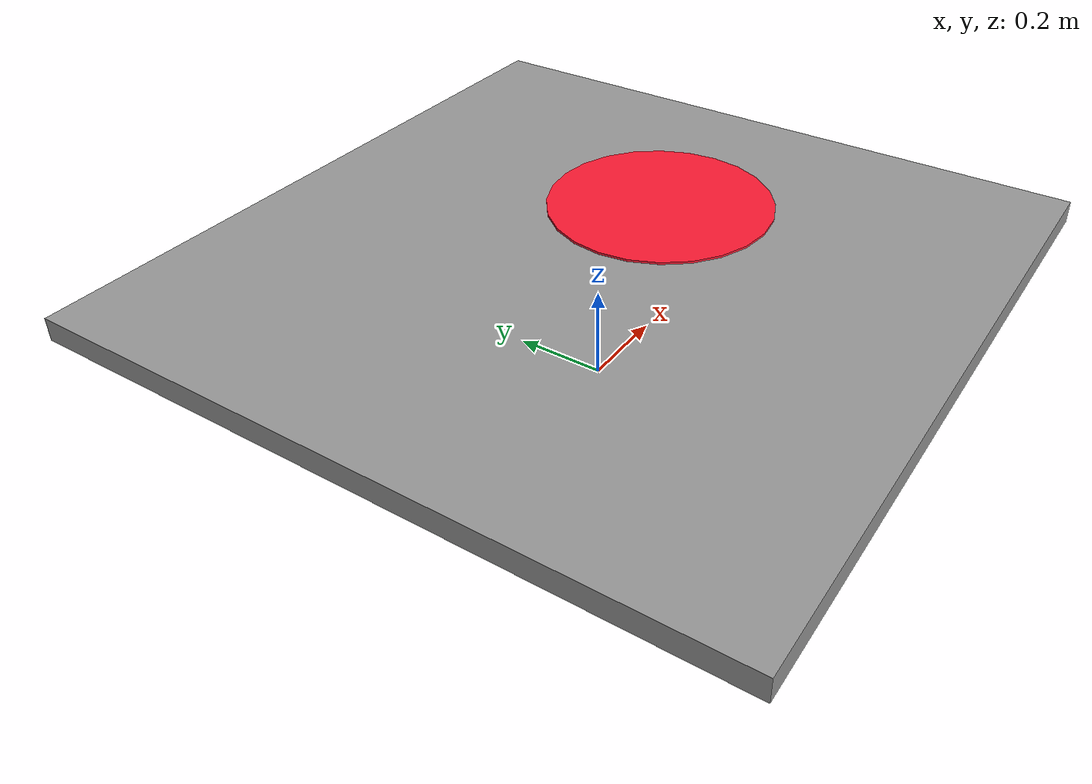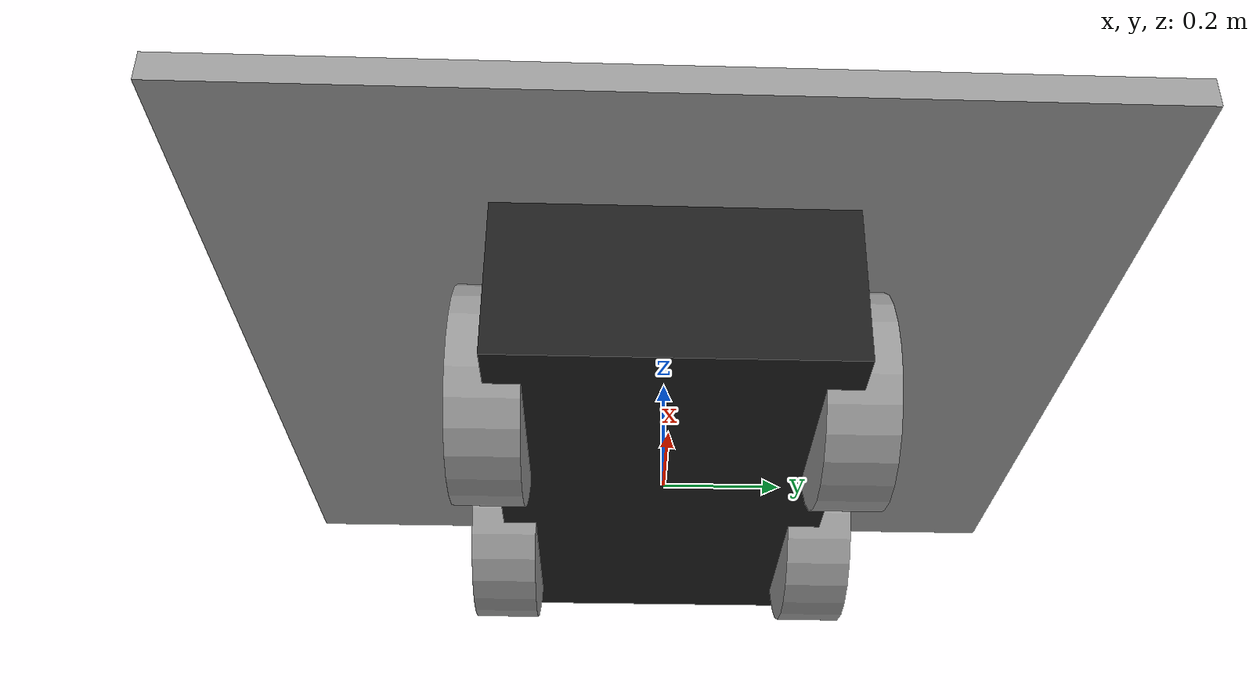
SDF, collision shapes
<?xml version='1.0'?>
<sdf version="1.3">
  <model name="husky">
    <pose>0 0 0 0 0 0</pose>
    <!-- Main Chassis -->
    <link name="base_link">
      <!-- Physics -->
      <collision name='collision'>
        <pose>0 0 0.1 0 0 0</pose>
        <geometry>
          <box>
            <size>1.0074 0.5709 0.2675</size>
          </box>
        </geometry>
      </collision>

      <inertial>
        <mass>1.3855</mass>
        <pose>-0.0856132 -0.000839955 0.238145  0 0 0</pose>
        <inertia>
          <ixx>2.2343</ixx>
          <ixy>-0.023642</ixy>
          <ixz>0.275174</ixz>
          <iyy>3.42518</iyy>
          <iyz>0.00239624</iyz>
          <izz>2.1241</izz>
        </inertia>
      </inertial>

      <!-- Visual -->
      <!-- Base frame -->
      <visual name='base'>
        <pose>0 0 0 0 0 0</pose>
        <geometry>
          <mesh><uri>model://husky/meshes/base_link.stl</uri></mesh>
        </geometry>
        <material>
          <script>
            <name>Gazebo/FlatBlack</name>
          </script>
        </material>
      </visual>

      <!-- Top Plate -->
      <visual name='top_plate'>
        <pose>0 0 0 0 0 0</pose>
        <geometry>
          <mesh><uri>model://husky/meshes/top_plate.stl</uri></mesh>
        </geometry>
        <material>
          <script>
            <name>Gazebo/Yellow</name>
          </script>
        </material>
      </visual>

      <!-- Front Bumper -->
      <visual name='front_bumper'>
        <pose>0.47 0 0.091 0 0 0</pose>
        <geometry>
          <mesh><uri>model://husky/meshes/bumper.stl</uri></mesh>
        </geometry>
        <material>
          <script>
            <name>Gazebo/FlatBlack</name>
          </script>
        </material>
      </visual>

      <!-- Rear Bumper -->
      <visual name='rear_bumper'>
        <pose>-0.47 0 0.091 0 0 3.141</pose>
        <geometry>
          <mesh><uri>model://husky/meshes/bumper.stl</uri></mesh>
        </geometry>
        <material>
          <script>
            <name>Gazebo/FlatBlack</name>
          </script>
        </material>
      </visual>

      <!-- User Rail -->
      <visual name='user_rail'>
        <pose>0.272 0 0.245 0 0 0</pose>
        <geometry>
          <mesh><uri>model://husky/meshes/user_rail.stl</uri></mesh>
        </geometry>
        <material>
          <script>
            <name>Gazebo/Grey</name>
          </script>
        </material>
      </visual>
    </link>

    <!-- Back Left Wheel -->
    <link name='back_left_wheel'>
      <pose>-0.256 0.285475 0.035 0 0 0</pose>
      <inertial>
        <mass>0.26357</mass>
        <pose>0 0 0 0 0 0</pose>
        <inertia>
          <ixx>0.0246688</ixx>
          <ixy>0</ixy>
          <ixz>0</ixz>
          <iyy>0.0246688</iyy>
          <iyz>0</iyz>
          <izz>0.0441058</izz>
        </inertia>
      </inertial>
      <collision name='back_left_wheel_collision'>
        <pose>0 0 0 -1.5707 0 0</pose>
        <geometry>
          <cylinder>
            <radius>0.17775</radius>
            <length>0.1143</length>
          </cylinder>
        </geometry>
        <surface>
          <friction>
            <ode>
              <mu>100000.0</mu>
              <mu2>100000.0</mu2>
              <slip1>0.0</slip1>
              <slip2>0.0</slip2>
              <fdir1>1 0 0</fdir1>
            </ode>
          </friction>
        </surface>
      </collision>
      <visual name='back_left_wheel'>
        <pose>0 0 0 -3.14159 0 0</pose>
        <geometry>
          <mesh><uri>model://husky/meshes/wheel.stl</uri></mesh>
        </geometry>
        <material>
          <script>
            <name>Gazebo/Grey</name>
          </script>
        </material>
      </visual>
    </link>
    <joint name='back_left_joint' type='revolute'>
      <parent>base_link</parent>
      <child>back_left_wheel</child>
      <axis>
        <xyz>0 1 0</xyz>
      </axis>
      <physics><ode><limit>
            <cfm>0.000000</cfm>
            <erp>0.900000</erp>
      </limit></ode></physics>
    </joint>

    <!-- Back Right Wheel -->
    <link name='back_right_wheel'>
      <pose>-0.256 -0.285475 0.035 0 0 0</pose>
      <inertial>
        <mass>0.26357</mass>
        <pose>0 0 0 0 0 0</pose>
        <inertia>
          <ixx>0.0246688</ixx>
          <ixy>0</ixy>
          <ixz>0</ixz>
          <iyy>0.0246688</iyy>
          <iyz>0</iyz>
          <izz>0.0441058</izz>
        </inertia>
      </inertial>
      <collision name='back_right_wheel_collision'>
        <pose>0 0 0 -1.5707 0 0</pose>
        <geometry>
          <cylinder>
            <radius>0.17775</radius>
            <length>0.1143</length>
          </cylinder>
        </geometry>
        <surface>
          <friction>
            <ode>
              <mu>100000.0</mu>
              <mu2>100000.0</mu2>
              <slip1>0.0</slip1>
              <slip2>0.0</slip2>
              <fdir1>1 0 0</fdir1>
            </ode>
          </friction>
        </surface>
      </collision>
      <visual name='back_right_wheel'>
        <pose>0 0 0 -3.14159 0 0</pose>
        <geometry>
          <mesh><uri>model://husky/meshes/wheel.stl</uri></mesh>
        </geometry>
        <material>
          <script>
            <name>Gazebo/Grey</name>
          </script>
        </material>
      </visual>
    </link>
    <joint name='back_right_joint' type='revolute'>
      <parent>base_link</parent>
      <child>back_right_wheel</child>
      <axis>
        <xyz>0 1 0</xyz>
      </axis>
      <physics><ode><limit>
            <cfm>0.000000</cfm>
            <erp>0.900000</erp>
      </limit></ode></physics>
    </joint>

    <!-- Front Left Wheel -->
    <link name='front_left_wheel'>
      <pose>0.256 0.285475 0.035 0 0 0</pose>
      <inertial>
        <mass>0.26357</mass>
        <pose>0 0 0 0 0 0</pose>
        <inertia>
          <ixx>0.0246688</ixx>
          <ixy>0</ixy>
          <ixz>0</ixz>
          <iyy>0.0246688</iyy>
          <iyz>0</iyz>
          <izz>0.0441058</izz>
        </inertia>
      </inertial>
      <collision name='front_left_wheel_collision'>
        <pose>0 0 0 -1.5707 0 0</pose>
        <geometry>
          <cylinder>
            <radius>0.17775</radius>
            <length>0.1143</length>
          </cylinder>
        </geometry>
        <surface>
          <friction>
            <ode>
              <mu>100000.0</mu>
              <mu2>100000.0</mu2>
              <slip1>0.0</slip1>
              <slip2>0.0</slip2>
              <fdir1>1 0 0</fdir1>
            </ode>
          </friction>
        </surface>
      </collision>
      <visual name='front_left_wheel'>
        <pose>0 0 0 -3.14159 0 0</pose>
        <geometry>
          <mesh><uri>model://husky/meshes/wheel.stl</uri></mesh>
        </geometry>
        <material>
          <script>
            <name>Gazebo/Grey</name>
          </script>
        </material>
      </visual>
    </link>
    <joint name='front_left_joint' type='revolute'>
      <parent>base_link</parent>
      <child>front_left_wheel</child>
      <axis>
        <xyz>0 1 0</xyz>
      </axis>
      <physics><ode><limit>
            <cfm>0.000000</cfm>
            <erp>0.900000</erp>
      </limit></ode></physics>
    </joint>

    <!-- Front Right Wheel -->
    <link name='front_right_wheel'>
      <pose>0.256 -0.285475 0.035 0 0 0</pose>
      <inertial>
        <mass>0.26357</mass>
        <pose>0 0 0 0 0 0</pose>
        <inertia>
          <ixx>0.0246688</ixx>
          <ixy>0</ixy>
          <ixz>0</ixz>
          <iyy>0.0246688</iyy>
          <iyz>0</iyz>
          <izz>0.0441058</izz>
        </inertia>
      </inertial>
      <collision name='front_right_wheel_collision'>
        <pose>0 0 0 -1.5707 0 0</pose>
        <geometry>
          <cylinder>
            <radius>0.17775</radius>
            <length>0.1143</length>
          </cylinder>
        </geometry>
        <surface>
          <friction>
            <ode>
              <mu>100000.0</mu>
              <mu2>100000.0</mu2>
              <slip1>0.0</slip1>
              <slip2>0.0</slip2>
              <fdir1>1 0 0</fdir1>
            </ode>
          </friction>
        </surface>
      </collision>
      <visual name='front_right_wheel'>
        <pose>0 0 0 -3.14159 0 0</pose>
        <geometry>
          <mesh><uri>model://husky/meshes/wheel.stl</uri></mesh>
        </geometry>
        <material>
          <script>
            <name>Gazebo/Grey</name>
          </script>
        </material>
      </visual>
    </link>
    <joint name='front_right_joint' type='revolute'>
      <parent>base_link</parent>
      <child>front_right_wheel</child>
      <axis>
        <xyz>0 1 0</xyz>
      </axis>
      <physics><ode><limit>
            <cfm>0.000000</cfm>
            <erp>0.900000</erp>
      </limit></ode></physics>
    </joint>

  <link name='black_sheet'>
    <inertial>
        <mass>0.2</mass>
    </inertial>
    <collision name='black_sheet_collision'>
      <pose>0 0 0.2675 0 0 0</pose>
      <geometry>
        <box>
          <size>1.5 1.5 .05</size>
        </box>
      </geometry>
    </collision>
    <visual name='black_sheet_visual'>
      <material>
          <script>
            <name>Gazebo/Grey</name>
            <uri>__default__</uri>
          </script>
      </material>
      <pose>0 0 0.2675 0 0 0</pose>
      <geometry>
        <box>
          <size>1.5 1.5 .05</size>
        </box>
      </geometry>
    </visual>
  </link>

  <joint name='black_sheet_joint' type='fixed'>
      <parent>base_link</parent>
      <child>black_sheet</child>
      <axis>
        <xyz>0 0 1</xyz>
      </axis>
  </joint>

  <link name='red_sheet'>
    <inertial>
        <mass>0.05</mass>
    </inertial>
    <collision name='red_sheet_collision'>
      <pose>0.25 0 0.298 0 0 0</pose>
      <geometry>
        <cylinder>
            <radius>0.25</radius>
            <length>0.005</length>
        </cylinder>
      </geometry>
    </collision>
    <visual name='red_sheet_visual'>
      <material>
          <ambient>1 0 0 0.2</ambient>
          <diffuse>1 0.1 0.2 1</diffuse>
          <specular>0 0 0 0</specular>
          <emissive>0 0 0 1</emissive>
      </material>
      <pose>0.25 0 0.298 0 0 0</pose>
      <geometry>
        <cylinder>
            <radius>0.25</radius>
            <length>0.005</length>
        </cylinder>
      </geometry>
    </visual>
  </link>

  <joint name='red_sheet_joint' type='fixed'>
      <parent>black_sheet</parent>
      <child>red_sheet</child>
      <axis>
        <xyz>0 0 1</xyz>
      </axis>
  </joint>

  <!-- Hokuyo Laser -->

    <plugin name="husky_diff_controller" filename="libhusky_gazebo_plugins.so">
      <alwaysOn>true</alwaysOn>
      <updateRate>100.0</updateRate>
      <backLeftJoint>back_left_joint</backLeftJoint>
      <backRightJoint>back_right_joint</backRightJoint>
      <frontLeftJoint>front_left_joint</frontLeftJoint>
      <frontRightJoint>front_right_joint</frontRightJoint>
      <wheelSeparation>0.5709</wheelSeparation>
      <wheelDiameter>0.3555</wheelDiameter>
      <torque>35</torque>
    </plugin>
  </model>
</sdf>
